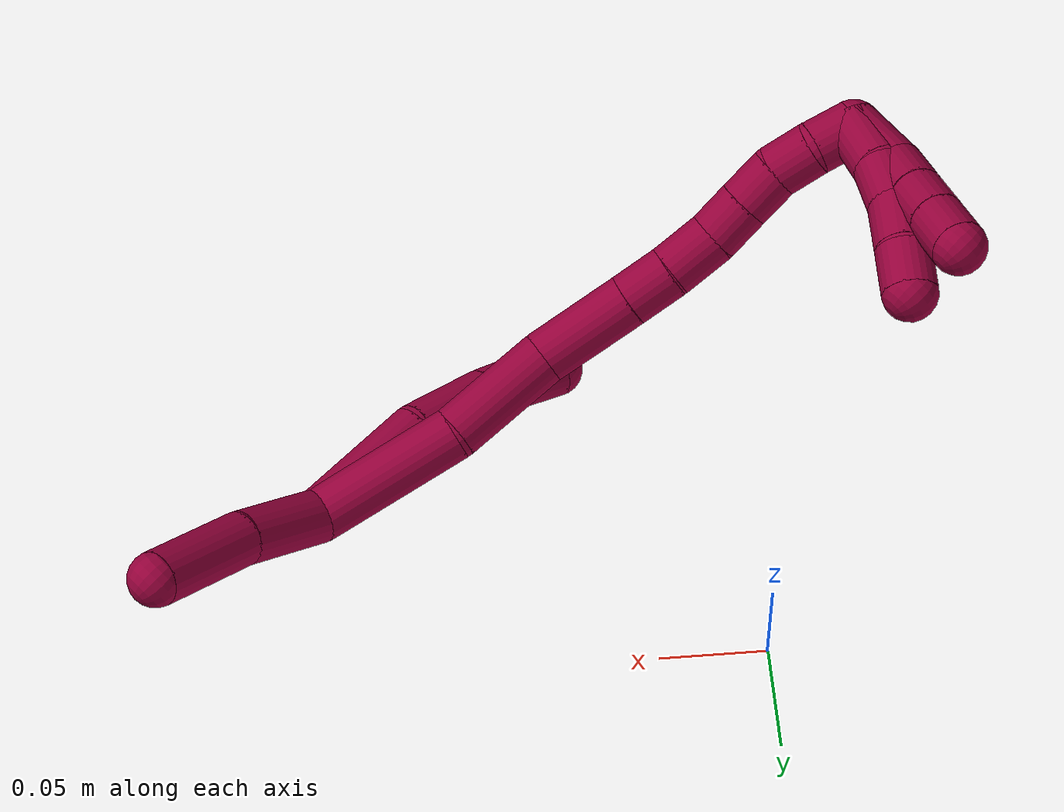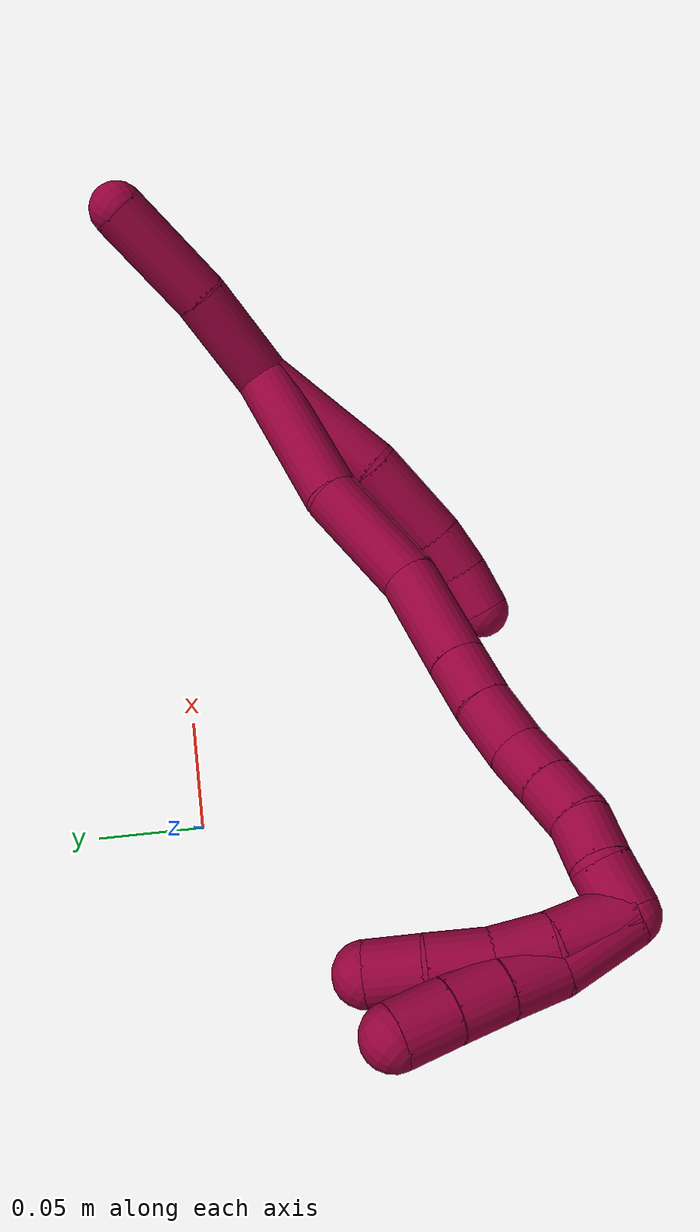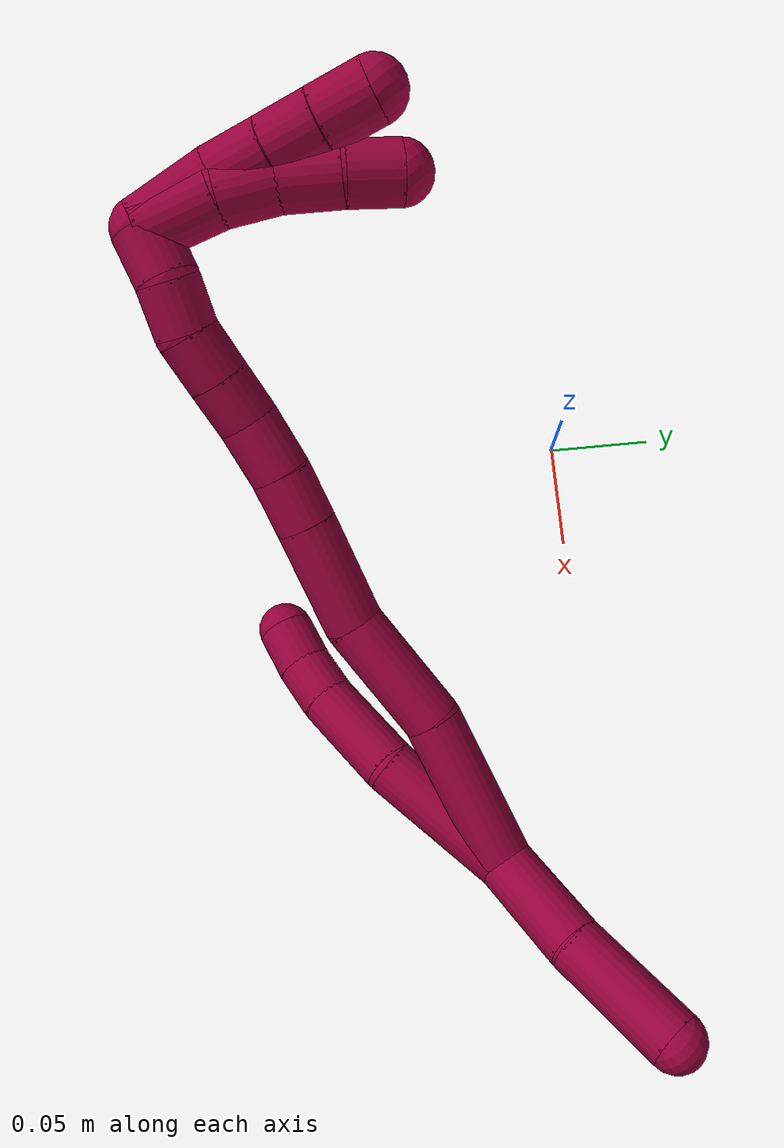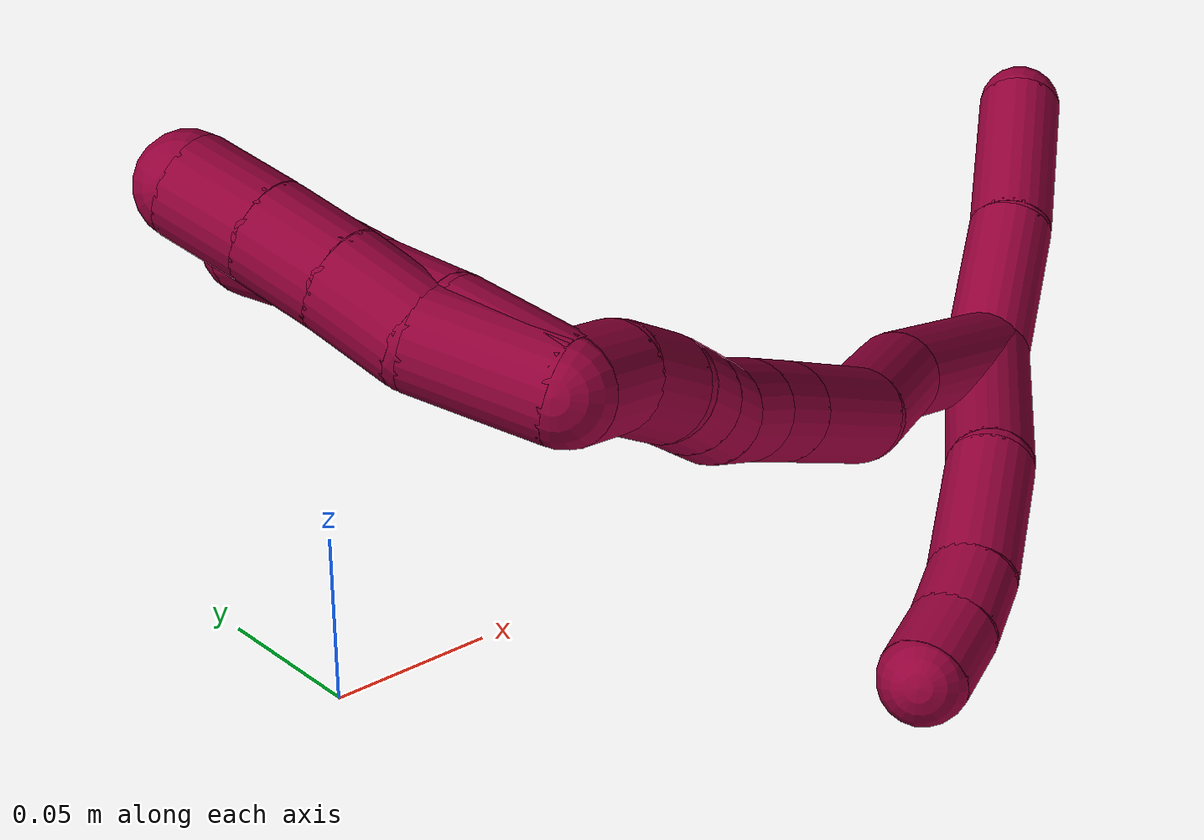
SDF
<sdf version="1.7">
 <world name="default">
  <model name="8">
   <static>0</static>
   <link name="8">
    <collision name="collision-cylinder-e_1_2_8">
     <pose>-0.00919 -0.008801 0.030004 0.285317 -0.285866 -0.041336</pose>
     <geometry><cylinder><radius>0.0125</radius><length>0.065182</length></cylinder></geometry>
     <surface>
      <friction><ode><mu>1.16</mu><mu2>1.16</mu2><slip1>0</slip1><slip2>0</slip2></ode></friction>
      <contact><ode><kp>1e+06</kp><kd>1</kd><max_vel>0</max_vel><min_depth>0.001</min_depth></ode></contact>
     </surface>
    </collision>
    <visual name="visual-cylinder-e_1_2_8">
     <pose>-0.00919 -0.008801 0.030004 0.285317 -0.285866 -0.041336</pose>
     <geometry><cylinder><radius>0.0125</radius><length>0.065182</length></cylinder></geometry>
     <material><ambient>0.584314 0 0.227451 1</ambient></material>
    </visual>
    <collision name="collision-cylinder-e_2_8_9">
     <pose>-0.029428 -0.022697 0.07797 0.276437 -0.534311 -0.076109</pose>
     <geometry><cylinder><radius>0.0125</radius><length>0.043389</length></cylinder></geometry>
     <surface>
      <friction><ode><mu>1.16</mu><mu2>1.16</mu2><slip1>0</slip1><slip2>0</slip2></ode></friction>
      <contact><ode><kp>1e+06</kp><kd>1</kd><max_vel>0</max_vel><min_depth>0.001</min_depth></ode></contact>
     </surface>
    </collision>
    <visual name="visual-cylinder-e_2_8_9">
     <pose>-0.029428 -0.022697 0.07797 0.276437 -0.534311 -0.076109</pose>
     <geometry><cylinder><radius>0.0125</radius><length>0.043389</length></cylinder></geometry>
     <material><ambient>0.584314 0 0.227451 1</ambient></material>
    </visual>
    <collision name="collision-cylinder-e_3_9_10">
     <pose>-0.045966 -0.028833 0.104627 0.118965 -0.559972 -0.034244</pose>
     <geometry><cylinder><radius>0.0125</radius><length>0.02067</length></cylinder></geometry>
     <surface>
      <friction><ode><mu>1.16</mu><mu2>1.16</mu2><slip1>0</slip1><slip2>0</slip2></ode></friction>
      <contact><ode><kp>1e+06</kp><kd>1</kd><max_vel>0</max_vel><min_depth>0.001</min_depth></ode></contact>
     </surface>
    </collision>
    <visual name="visual-cylinder-e_3_9_10">
     <pose>-0.045966 -0.028833 0.104627 0.118965 -0.559972 -0.034244</pose>
     <geometry><cylinder><radius>0.0125</radius><length>0.02067</length></cylinder></geometry>
     <material><ambient>0.584314 0 0.227451 1</ambient></material>
    </visual>
    <collision name="collision-cylinder-e_4_10_6">
     <pose>-0.056816 -0.029578 0.122205 -0.033067 -0.54271 0.009201</pose>
     <geometry><cylinder><radius>0.0125</radius><length>0.020759</length></cylinder></geometry>
     <surface>
      <friction><ode><mu>1.16</mu><mu2>1.16</mu2><slip1>0</slip1><slip2>0</slip2></ode></friction>
      <contact><ode><kp>1e+06</kp><kd>1</kd><max_vel>0</max_vel><min_depth>0.001</min_depth></ode></contact>
     </surface>
    </collision>
    <visual name="visual-cylinder-e_4_10_6">
     <pose>-0.056816 -0.029578 0.122205 -0.033067 -0.54271 0.009201</pose>
     <geometry><cylinder><radius>0.0125</radius><length>0.020759</length></cylinder></geometry>
     <material><ambient>0.584314 0 0.227451 1</ambient></material>
    </visual>
    <collision name="collision-cylinder-e_1_2_11">
     <pose>0.016031 0.006272 -0.016223 -2.77266 0.744676 -2.25022</pose>
     <geometry><cylinder><radius>0.0125</radius><length>0.047309</length></cylinder></geometry>
     <surface>
      <friction><ode><mu>1.16</mu><mu2>1.16</mu2><slip1>0</slip1><slip2>0</slip2></ode></friction>
      <contact><ode><kp>1e+06</kp><kd>1</kd><max_vel>0</max_vel><min_depth>0.001</min_depth></ode></contact>
     </surface>
    </collision>
    <visual name="visual-cylinder-e_1_2_11">
     <pose>0.016031 0.006272 -0.016223 -2.77266 0.744676 -2.25022</pose>
     <geometry><cylinder><radius>0.0125</radius><length>0.047309</length></cylinder></geometry>
     <material><ambient>0.584314 0 0.227451 1</ambient></material>
    </visual>
    <collision name="collision-cylinder-e_2_11_5">
     <pose>0.047551 0.021174 -0.051933 -2.72471 0.628427 -1.98765</pose>
     <geometry><cylinder><radius>0.0125</radius><length>0.052691</length></cylinder></geometry>
     <surface>
      <friction><ode><mu>1.16</mu><mu2>1.16</mu2><slip1>0</slip1><slip2>0</slip2></ode></friction>
      <contact><ode><kp>1e+06</kp><kd>1</kd><max_vel>0</max_vel><min_depth>0.001</min_depth></ode></contact>
     </surface>
    </collision>
    <visual name="visual-cylinder-e_2_11_5">
     <pose>0.047551 0.021174 -0.051933 -2.72471 0.628427 -1.98765</pose>
     <geometry><cylinder><radius>0.0125</radius><length>0.052691</length></cylinder></geometry>
     <material><ambient>0.584314 0 0.227451 1</ambient></material>
    </visual>
    <collision name="collision-cylinder-e_1_2_12">
     <pose>-0.003597 0.008431 0.034556 -0.239313 -0.10078 0.012127</pose>
     <geometry><cylinder><radius>0.0125</radius><length>0.071502</length></cylinder></geometry>
     <surface>
      <friction><ode><mu>1.16</mu><mu2>1.16</mu2><slip1>0</slip1><slip2>0</slip2></ode></friction>
      <contact><ode><kp>1e+06</kp><kd>1</kd><max_vel>0</max_vel><min_depth>0.001</min_depth></ode></contact>
     </surface>
    </collision>
    <visual name="visual-cylinder-e_1_2_12">
     <pose>-0.003597 0.008431 0.034556 -0.239313 -0.10078 0.012127</pose>
     <geometry><cylinder><radius>0.0125</radius><length>0.071502</length></cylinder></geometry>
     <material><ambient>0.584314 0 0.227451 1</ambient></material>
    </visual>
    <collision name="collision-cylinder-e_2_12_13">
     <pose>-0.009331 0.017395 0.095584 -0.020096 -0.080532 0.00081</pose>
     <geometry><cylinder><radius>0.0125</radius><length>0.053128</length></cylinder></geometry>
     <surface>
      <friction><ode><mu>1.16</mu><mu2>1.16</mu2><slip1>0</slip1><slip2>0</slip2></ode></friction>
      <contact><ode><kp>1e+06</kp><kd>1</kd><max_vel>0</max_vel><min_depth>0.001</min_depth></ode></contact>
     </surface>
    </collision>
    <visual name="visual-cylinder-e_2_12_13">
     <pose>-0.009331 0.017395 0.095584 -0.020096 -0.080532 0.00081</pose>
     <geometry><cylinder><radius>0.0125</radius><length>0.053128</length></cylinder></geometry>
     <material><ambient>0.584314 0 0.227451 1</ambient></material>
    </visual>
    <collision name="collision-cylinder-e_3_13_14">
     <pose>-0.011131 0.02489 0.144414 -0.301929 0.014395 -0.00219</pose>
     <geometry><cylinder><radius>0.0125</radius><length>0.046838</length></cylinder></geometry>
     <surface>
      <friction><ode><mu>1.16</mu><mu2>1.16</mu2><slip1>0</slip1><slip2>0</slip2></ode></friction>
      <contact><ode><kp>1e+06</kp><kd>1</kd><max_vel>0</max_vel><min_depth>0.001</min_depth></ode></contact>
     </surface>
    </collision>
    <visual name="visual-cylinder-e_3_13_14">
     <pose>-0.011131 0.02489 0.144414 -0.301929 0.014395 -0.00219</pose>
     <geometry><cylinder><radius>0.0125</radius><length>0.046838</length></cylinder></geometry>
     <material><ambient>0.584314 0 0.227451 1</ambient></material>
    </visual>
    <collision name="collision-cylinder-e_4_14_15">
     <pose>-0.01063 0.035068 0.177675 -0.286775 0.014382 -0.002076</pose>
     <geometry><cylinder><radius>0.0125</radius><length>0.022738</length></cylinder></geometry>
     <surface>
      <friction><ode><mu>1.16</mu><mu2>1.16</mu2><slip1>0</slip1><slip2>0</slip2></ode></friction>
      <contact><ode><kp>1e+06</kp><kd>1</kd><max_vel>0</max_vel><min_depth>0.001</min_depth></ode></contact>
     </surface>
    </collision>
    <visual name="visual-cylinder-e_4_14_15">
     <pose>-0.01063 0.035068 0.177675 -0.286775 0.014382 -0.002076</pose>
     <geometry><cylinder><radius>0.0125</radius><length>0.022738</length></cylinder></geometry>
     <material><ambient>0.584314 0 0.227451 1</ambient></material>
    </visual>
    <collision name="collision-cylinder-e_5_15_16">
     <pose>-0.0101 0.040666 0.200635 -0.195044 0.02985 -0.002921</pose>
     <geometry><cylinder><radius>0.0125</radius><length>0.02459</length></cylinder></geometry>
     <surface>
      <friction><ode><mu>1.16</mu><mu2>1.16</mu2><slip1>0</slip1><slip2>0</slip2></ode></friction>
      <contact><ode><kp>1e+06</kp><kd>1</kd><max_vel>0</max_vel><min_depth>0.001</min_depth></ode></contact>
     </surface>
    </collision>
    <visual name="visual-cylinder-e_5_15_16">
     <pose>-0.0101 0.040666 0.200635 -0.195044 0.02985 -0.002921</pose>
     <geometry><cylinder><radius>0.0125</radius><length>0.02459</length></cylinder></geometry>
     <material><ambient>0.584314 0 0.227451 1</ambient></material>
    </visual>
    <collision name="collision-cylinder-e_6_16_17">
     <pose>-0.007708 0.044927 0.222478 -0.189703 0.200392 -0.019128</pose>
     <geometry><cylinder><radius>0.0125</radius><length>0.020339</length></cylinder></geometry>
     <surface>
      <friction><ode><mu>1.16</mu><mu2>1.16</mu2><slip1>0</slip1><slip2>0</slip2></ode></friction>
      <contact><ode><kp>1e+06</kp><kd>1</kd><max_vel>0</max_vel><min_depth>0.001</min_depth></ode></contact>
     </surface>
    </collision>
    <visual name="visual-cylinder-e_6_16_17">
     <pose>-0.007708 0.044927 0.222478 -0.189703 0.200392 -0.019128</pose>
     <geometry><cylinder><radius>0.0125</radius><length>0.020339</length></cylinder></geometry>
     <material><ambient>0.584314 0 0.227451 1</ambient></material>
    </visual>
    <collision name="collision-cylinder-e_7_17_18">
     <pose>-0.003727 0.048756 0.242045 -0.19679 0.193772 -0.019187</pose>
     <geometry><cylinder><radius>0.0125</radius><length>0.020324</length></cylinder></geometry>
     <surface>
      <friction><ode><mu>1.16</mu><mu2>1.16</mu2><slip1>0</slip1><slip2>0</slip2></ode></friction>
      <contact><ode><kp>1e+06</kp><kd>1</kd><max_vel>0</max_vel><min_depth>0.001</min_depth></ode></contact>
     </surface>
    </collision>
    <visual name="visual-cylinder-e_7_17_18">
     <pose>-0.003727 0.048756 0.242045 -0.19679 0.193772 -0.019187</pose>
     <geometry><cylinder><radius>0.0125</radius><length>0.020324</length></cylinder></geometry>
     <material><ambient>0.584314 0 0.227451 1</ambient></material>
    </visual>
    <collision name="collision-cylinder-e_8_18_19">
     <pose>-0.001171 0.0549 0.261029 -0.427599 0.059155 -0.012847</pose>
     <geometry><cylinder><radius>0.0125</radius><length>0.020266</length></cylinder></geometry>
     <surface>
      <friction><ode><mu>1.16</mu><mu2>1.16</mu2><slip1>0</slip1><slip2>0</slip2></ode></friction>
      <contact><ode><kp>1e+06</kp><kd>1</kd><max_vel>0</max_vel><min_depth>0.001</min_depth></ode></contact>
     </surface>
    </collision>
    <visual name="visual-cylinder-e_8_18_19">
     <pose>-0.001171 0.0549 0.261029 -0.427599 0.059155 -0.012847</pose>
     <geometry><cylinder><radius>0.0125</radius><length>0.020266</length></cylinder></geometry>
     <material><ambient>0.584314 0 0.227451 1</ambient></material>
    </visual>
    <collision name="collision-cylinder-e_9_19_1">
     <pose>-0.002242 0.061561 0.279924 -0.249151 -0.16544 0.020764</pose>
     <geometry><cylinder><radius>0.0125</radius><length>0.020275</length></cylinder></geometry>
     <surface>
      <friction><ode><mu>1.16</mu><mu2>1.16</mu2><slip1>0</slip1><slip2>0</slip2></ode></friction>
      <contact><ode><kp>1e+06</kp><kd>1</kd><max_vel>0</max_vel><min_depth>0.001</min_depth></ode></contact>
     </surface>
    </collision>
    <visual name="visual-cylinder-e_9_19_1">
     <pose>-0.002242 0.061561 0.279924 -0.249151 -0.16544 0.020764</pose>
     <geometry><cylinder><radius>0.0125</radius><length>0.020275</length></cylinder></geometry>
     <material><ambient>0.584314 0 0.227451 1</ambient></material>
    </visual>
    <collision name="collision-cylinder-e_1_1_20">
     <pose>-0.005075 0.078821 0.28494 -1.87683 -0.074838 0.10209</pose>
     <geometry><cylinder><radius>0.0125</radius><length>0.031119</length></cylinder></geometry>
     <surface>
      <friction><ode><mu>1.16</mu><mu2>1.16</mu2><slip1>0</slip1><slip2>0</slip2></ode></friction>
      <contact><ode><kp>1e+06</kp><kd>1</kd><max_vel>0</max_vel><min_depth>0.001</min_depth></ode></contact>
     </surface>
    </collision>
    <visual name="visual-cylinder-e_1_1_20">
     <pose>-0.005075 0.078821 0.28494 -1.87683 -0.074838 0.10209</pose>
     <geometry><cylinder><radius>0.0125</radius><length>0.031119</length></cylinder></geometry>
     <material><ambient>0.584314 0 0.227451 1</ambient></material>
    </visual>
    <collision name="collision-cylinder-e_2_20_21">
     <pose>-0.008195 0.103661 0.275202 -2.03772 -0.172282 0.278659</pose>
     <geometry><cylinder><radius>0.0125</radius><length>0.022835</length></cylinder></geometry>
     <surface>
      <friction><ode><mu>1.16</mu><mu2>1.16</mu2><slip1>0</slip1><slip2>0</slip2></ode></friction>
      <contact><ode><kp>1e+06</kp><kd>1</kd><max_vel>0</max_vel><min_depth>0.001</min_depth></ode></contact>
     </surface>
    </collision>
    <visual name="visual-cylinder-e_2_20_21">
     <pose>-0.008195 0.103661 0.275202 -2.03772 -0.172282 0.278659</pose>
     <geometry><cylinder><radius>0.0125</radius><length>0.022835</length></cylinder></geometry>
     <material><ambient>0.584314 0 0.227451 1</ambient></material>
    </visual>
    <collision name="collision-cylinder-e_3_21_22">
     <pose>-0.011764 0.123472 0.263065 -2.19761 -0.132804 0.259084</pose>
     <geometry><cylinder><radius>0.0125</radius><length>0.024332</length></cylinder></geometry>
     <surface>
      <friction><ode><mu>1.16</mu><mu2>1.16</mu2><slip1>0</slip1><slip2>0</slip2></ode></friction>
      <contact><ode><kp>1e+06</kp><kd>1</kd><max_vel>0</max_vel><min_depth>0.001</min_depth></ode></contact>
     </surface>
    </collision>
    <visual name="visual-cylinder-e_3_21_22">
     <pose>-0.011764 0.123472 0.263065 -2.19761 -0.132804 0.259084</pose>
     <geometry><cylinder><radius>0.0125</radius><length>0.024332</length></cylinder></geometry>
     <material><ambient>0.584314 0 0.227451 1</ambient></material>
    </visual>
    <collision name="collision-cylinder-e_4_22_4">
     <pose>-0.016318 0.141349 0.249402 -2.25302 -0.274537 0.564858</pose>
     <geometry><cylinder><radius>0.0125</radius><length>0.021714</length></cylinder></geometry>
     <surface>
      <friction><ode><mu>1.16</mu><mu2>1.16</mu2><slip1>0</slip1><slip2>0</slip2></ode></friction>
      <contact><ode><kp>1e+06</kp><kd>1</kd><max_vel>0</max_vel><min_depth>0.001</min_depth></ode></contact>
     </surface>
    </collision>
    <visual name="visual-cylinder-e_4_22_4">
     <pose>-0.016318 0.141349 0.249402 -2.25302 -0.274537 0.564858</pose>
     <geometry><cylinder><radius>0.0125</radius><length>0.021714</length></cylinder></geometry>
     <material><ambient>0.584314 0 0.227451 1</ambient></material>
    </visual>
    <collision name="collision-cylinder-e_1_1_23">
     <pose>-0.006866 0.080481 0.28746 -1.701 -0.176181 0.200599</pose>
     <geometry><cylinder><radius>0.0125</radius><length>0.033712</length></cylinder></geometry>
     <surface>
      <friction><ode><mu>1.16</mu><mu2>1.16</mu2><slip1>0</slip1><slip2>0</slip2></ode></friction>
      <contact><ode><kp>1e+06</kp><kd>1</kd><max_vel>0</max_vel><min_depth>0.001</min_depth></ode></contact>
     </surface>
    </collision>
    <visual name="visual-cylinder-e_1_1_23">
     <pose>-0.006866 0.080481 0.28746 -1.701 -0.176181 0.200599</pose>
     <geometry><cylinder><radius>0.0125</radius><length>0.033712</length></cylinder></geometry>
     <material><ambient>0.584314 0 0.227451 1</ambient></material>
    </visual>
    <collision name="collision-cylinder-e_2_23_24">
     <pose>-0.009249 0.107986 0.282335 -1.83342 0.049879 -0.065049</pose>
     <geometry><cylinder><radius>0.0125</radius><length>0.022914</length></cylinder></geometry>
     <surface>
      <friction><ode><mu>1.16</mu><mu2>1.16</mu2><slip1>0</slip1><slip2>0</slip2></ode></friction>
      <contact><ode><kp>1e+06</kp><kd>1</kd><max_vel>0</max_vel><min_depth>0.001</min_depth></ode></contact>
     </surface>
    </collision>
    <visual name="visual-cylinder-e_2_23_24">
     <pose>-0.009249 0.107986 0.282335 -1.83342 0.049879 -0.065049</pose>
     <geometry><cylinder><radius>0.0125</radius><length>0.022914</length></cylinder></geometry>
     <material><ambient>0.584314 0 0.227451 1</ambient></material>
    </visual>
    <collision name="collision-cylinder-e_3_24_25">
     <pose>-0.008603 0.129282 0.276733 -1.82217 0.007024 -0.009056</pose>
     <geometry><cylinder><radius>0.0125</radius><length>0.021155</length></cylinder></geometry>
     <surface>
      <friction><ode><mu>1.16</mu><mu2>1.16</mu2><slip1>0</slip1><slip2>0</slip2></ode></friction>
      <contact><ode><kp>1e+06</kp><kd>1</kd><max_vel>0</max_vel><min_depth>0.001</min_depth></ode></contact>
     </surface>
    </collision>
    <visual name="visual-cylinder-e_3_24_25">
     <pose>-0.008603 0.129282 0.276733 -1.82217 0.007024 -0.009056</pose>
     <geometry><cylinder><radius>0.0125</radius><length>0.021155</length></cylinder></geometry>
     <material><ambient>0.584314 0 0.227451 1</ambient></material>
    </visual>
    <collision name="collision-cylinder-e_4_25_3">
     <pose>-0.008765 0.150293 0.271375 -1.81881 -0.021221 0.027264</pose>
     <geometry><cylinder><radius>0.0125</radius><length>0.022218</length></cylinder></geometry>
     <surface>
      <friction><ode><mu>1.16</mu><mu2>1.16</mu2><slip1>0</slip1><slip2>0</slip2></ode></friction>
      <contact><ode><kp>1e+06</kp><kd>1</kd><max_vel>0</max_vel><min_depth>0.001</min_depth></ode></contact>
     </surface>
    </collision>
    <visual name="visual-cylinder-e_4_25_3">
     <pose>-0.008765 0.150293 0.271375 -1.81881 -0.021221 0.027264</pose>
     <geometry><cylinder><radius>0.0125</radius><length>0.022218</length></cylinder></geometry>
     <material><ambient>0.584314 0 0.227451 1</ambient></material>
    </visual>
    <collision name="collision-sphere-3">
     <pose>-0.009 0.16106 0.268649 0 -0 0</pose>
     <geometry><sphere><radius>0.0125</radius></sphere></geometry>
     <surface>
      <friction><ode><mu>1.16</mu><mu2>1.16</mu2><slip1>0</slip1><slip2>0</slip2></ode></friction>
      <contact><ode><kp>1e+06</kp><kd>1</kd><max_vel>0</max_vel><min_depth>0.001</min_depth></ode></contact>
     </surface>
    </collision>
    <visual name="visual-sphere-3">
     <pose>-0.009 0.16106 0.268649 0 -0 0</pose>
     <geometry><sphere><radius>0.0125</radius></sphere></geometry>
     <material><ambient>0.584314 0 0.227451 1</ambient></material>
    </visual>
    <collision name="collision-sphere-25">
     <pose>-0.008529 0.139527 0.274102 0 -0 0</pose>
     <geometry><sphere><radius>0.0125</radius></sphere></geometry>
     <surface>
      <friction><ode><mu>1.16</mu><mu2>1.16</mu2><slip1>0</slip1><slip2>0</slip2></ode></friction>
      <contact><ode><kp>1e+06</kp><kd>1</kd><max_vel>0</max_vel><min_depth>0.001</min_depth></ode></contact>
     </surface>
    </collision>
    <visual name="visual-sphere-25">
     <pose>-0.008529 0.139527 0.274102 0 -0 0</pose>
     <geometry><sphere><radius>0.0125</radius></sphere></geometry>
     <material><ambient>0.584314 0 0.227451 1</ambient></material>
    </visual>
    <collision name="collision-sphere-24">
     <pose>-0.008678 0.119037 0.279364 0 -0 0</pose>
     <geometry><sphere><radius>0.0125</radius></sphere></geometry>
     <surface>
      <friction><ode><mu>1.16</mu><mu2>1.16</mu2><slip1>0</slip1><slip2>0</slip2></ode></friction>
      <contact><ode><kp>1e+06</kp><kd>1</kd><max_vel>0</max_vel><min_depth>0.001</min_depth></ode></contact>
     </surface>
    </collision>
    <visual name="visual-sphere-24">
     <pose>-0.008678 0.119037 0.279364 0 -0 0</pose>
     <geometry><sphere><radius>0.0125</radius></sphere></geometry>
     <material><ambient>0.584314 0 0.227451 1</ambient></material>
    </visual>
    <collision name="collision-sphere-23">
     <pose>-0.00982 0.096936 0.285305 0 -0 0</pose>
     <geometry><sphere><radius>0.0125</radius></sphere></geometry>
     <surface>
      <friction><ode><mu>1.16</mu><mu2>1.16</mu2><slip1>0</slip1><slip2>0</slip2></ode></friction>
      <contact><ode><kp>1e+06</kp><kd>1</kd><max_vel>0</max_vel><min_depth>0.001</min_depth></ode></contact>
     </surface>
    </collision>
    <visual name="visual-sphere-23">
     <pose>-0.00982 0.096936 0.285305 0 -0 0</pose>
     <geometry><sphere><radius>0.0125</radius></sphere></geometry>
     <material><ambient>0.584314 0 0.227451 1</ambient></material>
    </visual>
    <collision name="collision-sphere-4">
     <pose>-0.019261 0.149461 0.242813 0 -0 0</pose>
     <geometry><sphere><radius>0.0125</radius></sphere></geometry>
     <surface>
      <friction><ode><mu>1.16</mu><mu2>1.16</mu2><slip1>0</slip1><slip2>0</slip2></ode></friction>
      <contact><ode><kp>1e+06</kp><kd>1</kd><max_vel>0</max_vel><min_depth>0.001</min_depth></ode></contact>
     </surface>
    </collision>
    <visual name="visual-sphere-4">
     <pose>-0.019261 0.149461 0.242813 0 -0 0</pose>
     <geometry><sphere><radius>0.0125</radius></sphere></geometry>
     <material><ambient>0.584314 0 0.227451 1</ambient></material>
    </visual>
    <collision name="collision-sphere-22">
     <pose>-0.013375 0.133238 0.255992 0 -0 0</pose>
     <geometry><sphere><radius>0.0125</radius></sphere></geometry>
     <surface>
      <friction><ode><mu>1.16</mu><mu2>1.16</mu2><slip1>0</slip1><slip2>0</slip2></ode></friction>
      <contact><ode><kp>1e+06</kp><kd>1</kd><max_vel>0</max_vel><min_depth>0.001</min_depth></ode></contact>
     </surface>
    </collision>
    <visual name="visual-sphere-22">
     <pose>-0.013375 0.133238 0.255992 0 -0 0</pose>
     <geometry><sphere><radius>0.0125</radius></sphere></geometry>
     <material><ambient>0.584314 0 0.227451 1</ambient></material>
    </visual>
    <collision name="collision-sphere-21">
     <pose>-0.010153 0.113705 0.270138 0 -0 0</pose>
     <geometry><sphere><radius>0.0125</radius></sphere></geometry>
     <surface>
      <friction><ode><mu>1.16</mu><mu2>1.16</mu2><slip1>0</slip1><slip2>0</slip2></ode></friction>
      <contact><ode><kp>1e+06</kp><kd>1</kd><max_vel>0</max_vel><min_depth>0.001</min_depth></ode></contact>
     </surface>
    </collision>
    <visual name="visual-sphere-21">
     <pose>-0.010153 0.113705 0.270138 0 -0 0</pose>
     <geometry><sphere><radius>0.0125</radius></sphere></geometry>
     <material><ambient>0.584314 0 0.227451 1</ambient></material>
    </visual>
    <collision name="collision-sphere-20">
     <pose>-0.006238 0.093616 0.280265 0 -0 0</pose>
     <geometry><sphere><radius>0.0125</radius></sphere></geometry>
     <surface>
      <friction><ode><mu>1.16</mu><mu2>1.16</mu2><slip1>0</slip1><slip2>0</slip2></ode></friction>
      <contact><ode><kp>1e+06</kp><kd>1</kd><max_vel>0</max_vel><min_depth>0.001</min_depth></ode></contact>
     </surface>
    </collision>
    <visual name="visual-sphere-20">
     <pose>-0.006238 0.093616 0.280265 0 -0 0</pose>
     <geometry><sphere><radius>0.0125</radius></sphere></geometry>
     <material><ambient>0.584314 0 0.227451 1</ambient></material>
    </visual>
    <collision name="collision-sphere-11">
     <pose>0.032063 0.012545 -0.032446 0 -0 0</pose>
     <geometry><sphere><radius>0.0125</radius></sphere></geometry>
     <surface>
      <friction><ode><mu>1.16</mu><mu2>1.16</mu2><slip1>0</slip1><slip2>0</slip2></ode></friction>
      <contact><ode><kp>1e+06</kp><kd>1</kd><max_vel>0</max_vel><min_depth>0.001</min_depth></ode></contact>
     </surface>
    </collision>
    <visual name="visual-sphere-11">
     <pose>0.032063 0.012545 -0.032446 0 -0 0</pose>
     <geometry><sphere><radius>0.0125</radius></sphere></geometry>
     <material><ambient>0.584314 0 0.227451 1</ambient></material>
    </visual>
    <collision name="collision-sphere-6">
     <pose>-0.062177 -0.029284 0.131088 0 -0 0</pose>
     <geometry><sphere><radius>0.0125</radius></sphere></geometry>
     <surface>
      <friction><ode><mu>1.16</mu><mu2>1.16</mu2><slip1>0</slip1><slip2>0</slip2></ode></friction>
      <contact><ode><kp>1e+06</kp><kd>1</kd><max_vel>0</max_vel><min_depth>0.001</min_depth></ode></contact>
     </surface>
    </collision>
    <visual name="visual-sphere-6">
     <pose>-0.062177 -0.029284 0.131088 0 -0 0</pose>
     <geometry><sphere><radius>0.0125</radius></sphere></geometry>
     <material><ambient>0.584314 0 0.227451 1</ambient></material>
    </visual>
    <collision name="collision-sphere-10">
     <pose>-0.051455 -0.029872 0.113322 0 -0 0</pose>
     <geometry><sphere><radius>0.0125</radius></sphere></geometry>
     <surface>
      <friction><ode><mu>1.16</mu><mu2>1.16</mu2><slip1>0</slip1><slip2>0</slip2></ode></friction>
      <contact><ode><kp>1e+06</kp><kd>1</kd><max_vel>0</max_vel><min_depth>0.001</min_depth></ode></contact>
     </surface>
    </collision>
    <visual name="visual-sphere-10">
     <pose>-0.051455 -0.029872 0.113322 0 -0 0</pose>
     <geometry><sphere><radius>0.0125</radius></sphere></geometry>
     <material><ambient>0.584314 0 0.227451 1</ambient></material>
    </visual>
    <collision name="collision-sphere-9">
     <pose>-0.040476 -0.027793 0.095932 0 -0 0</pose>
     <geometry><sphere><radius>0.0125</radius></sphere></geometry>
     <surface>
      <friction><ode><mu>1.16</mu><mu2>1.16</mu2><slip1>0</slip1><slip2>0</slip2></ode></friction>
      <contact><ode><kp>1e+06</kp><kd>1</kd><max_vel>0</max_vel><min_depth>0.001</min_depth></ode></contact>
     </surface>
    </collision>
    <visual name="visual-sphere-9">
     <pose>-0.040476 -0.027793 0.095932 0 -0 0</pose>
     <geometry><sphere><radius>0.0125</radius></sphere></geometry>
     <material><ambient>0.584314 0 0.227451 1</ambient></material>
    </visual>
    <collision name="collision-sphere-2">
     <geometry><sphere><radius>0.0125</radius></sphere></geometry>
     <surface>
      <friction><ode><mu>1.16</mu><mu2>1.16</mu2><slip1>0</slip1><slip2>0</slip2></ode></friction>
      <contact><ode><kp>1e+06</kp><kd>1</kd><max_vel>0</max_vel><min_depth>0.001</min_depth></ode></contact>
     </surface>
    </collision>
    <visual name="visual-sphere-2">
     <geometry><sphere><radius>0.0125</radius></sphere></geometry>
     <material><ambient>0.584314 0 0.227451 1</ambient></material>
    </visual>
    <collision name="collision-sphere-19">
     <pose>-0.000572 0.059095 0.270234 0 -0 0</pose>
     <geometry><sphere><radius>0.0125</radius></sphere></geometry>
     <surface>
      <friction><ode><mu>1.16</mu><mu2>1.16</mu2><slip1>0</slip1><slip2>0</slip2></ode></friction>
      <contact><ode><kp>1e+06</kp><kd>1</kd><max_vel>0</max_vel><min_depth>0.001</min_depth></ode></contact>
     </surface>
    </collision>
    <visual name="visual-sphere-19">
     <pose>-0.000572 0.059095 0.270234 0 -0 0</pose>
     <geometry><sphere><radius>0.0125</radius></sphere></geometry>
     <material><ambient>0.584314 0 0.227451 1</ambient></material>
    </visual>
    <collision name="collision-sphere-8">
     <pose>-0.018381 -0.017602 0.060009 0 -0 0</pose>
     <geometry><sphere><radius>0.0125</radius></sphere></geometry>
     <surface>
      <friction><ode><mu>1.16</mu><mu2>1.16</mu2><slip1>0</slip1><slip2>0</slip2></ode></friction>
      <contact><ode><kp>1e+06</kp><kd>1</kd><max_vel>0</max_vel><min_depth>0.001</min_depth></ode></contact>
     </surface>
    </collision>
    <visual name="visual-sphere-8">
     <pose>-0.018381 -0.017602 0.060009 0 -0 0</pose>
     <geometry><sphere><radius>0.0125</radius></sphere></geometry>
     <material><ambient>0.584314 0 0.227451 1</ambient></material>
    </visual>
    <collision name="collision-sphere-5">
     <pose>0.063039 0.029804 -0.07142 0 -0 0</pose>
     <geometry><sphere><radius>0.0125</radius></sphere></geometry>
     <surface>
      <friction><ode><mu>1.16</mu><mu2>1.16</mu2><slip1>0</slip1><slip2>0</slip2></ode></friction>
      <contact><ode><kp>1e+06</kp><kd>1</kd><max_vel>0</max_vel><min_depth>0.001</min_depth></ode></contact>
     </surface>
    </collision>
    <visual name="visual-sphere-5">
     <pose>0.063039 0.029804 -0.07142 0 -0 0</pose>
     <geometry><sphere><radius>0.0125</radius></sphere></geometry>
     <material><ambient>0.584314 0 0.227451 1</ambient></material>
    </visual>
    <collision name="collision-sphere-12">
     <pose>-0.007194 0.016862 0.069112 0 -0 0</pose>
     <geometry><sphere><radius>0.0125</radius></sphere></geometry>
     <surface>
      <friction><ode><mu>1.16</mu><mu2>1.16</mu2><slip1>0</slip1><slip2>0</slip2></ode></friction>
      <contact><ode><kp>1e+06</kp><kd>1</kd><max_vel>0</max_vel><min_depth>0.001</min_depth></ode></contact>
     </surface>
    </collision>
    <visual name="visual-sphere-12">
     <pose>-0.007194 0.016862 0.069112 0 -0 0</pose>
     <geometry><sphere><radius>0.0125</radius></sphere></geometry>
     <material><ambient>0.584314 0 0.227451 1</ambient></material>
    </visual>
    <collision name="collision-sphere-13">
     <pose>-0.011468 0.017927 0.122057 0 -0 0</pose>
     <geometry><sphere><radius>0.0125</radius></sphere></geometry>
     <surface>
      <friction><ode><mu>1.16</mu><mu2>1.16</mu2><slip1>0</slip1><slip2>0</slip2></ode></friction>
      <contact><ode><kp>1e+06</kp><kd>1</kd><max_vel>0</max_vel><min_depth>0.001</min_depth></ode></contact>
     </surface>
    </collision>
    <visual name="visual-sphere-13">
     <pose>-0.011468 0.017927 0.122057 0 -0 0</pose>
     <geometry><sphere><radius>0.0125</radius></sphere></geometry>
     <material><ambient>0.584314 0 0.227451 1</ambient></material>
    </visual>
    <collision name="collision-sphere-14">
     <pose>-0.010793 0.031853 0.166771 0 -0 0</pose>
     <geometry><sphere><radius>0.0125</radius></sphere></geometry>
     <surface>
      <friction><ode><mu>1.16</mu><mu2>1.16</mu2><slip1>0</slip1><slip2>0</slip2></ode></friction>
      <contact><ode><kp>1e+06</kp><kd>1</kd><max_vel>0</max_vel><min_depth>0.001</min_depth></ode></contact>
     </surface>
    </collision>
    <visual name="visual-sphere-14">
     <pose>-0.010793 0.031853 0.166771 0 -0 0</pose>
     <geometry><sphere><radius>0.0125</radius></sphere></geometry>
     <material><ambient>0.584314 0 0.227451 1</ambient></material>
    </visual>
    <collision name="collision-sphere-15">
     <pose>-0.010466 0.038284 0.188578 0 -0 0</pose>
     <geometry><sphere><radius>0.0125</radius></sphere></geometry>
     <surface>
      <friction><ode><mu>1.16</mu><mu2>1.16</mu2><slip1>0</slip1><slip2>0</slip2></ode></friction>
      <contact><ode><kp>1e+06</kp><kd>1</kd><max_vel>0</max_vel><min_depth>0.001</min_depth></ode></contact>
     </surface>
    </collision>
    <visual name="visual-sphere-15">
     <pose>-0.010466 0.038284 0.188578 0 -0 0</pose>
     <geometry><sphere><radius>0.0125</radius></sphere></geometry>
     <material><ambient>0.584314 0 0.227451 1</ambient></material>
    </visual>
    <collision name="collision-sphere-16">
     <pose>-0.009733 0.043048 0.212691 0 -0 0</pose>
     <geometry><sphere><radius>0.0125</radius></sphere></geometry>
     <surface>
      <friction><ode><mu>1.16</mu><mu2>1.16</mu2><slip1>0</slip1><slip2>0</slip2></ode></friction>
      <contact><ode><kp>1e+06</kp><kd>1</kd><max_vel>0</max_vel><min_depth>0.001</min_depth></ode></contact>
     </surface>
    </collision>
    <visual name="visual-sphere-16">
     <pose>-0.009733 0.043048 0.212691 0 -0 0</pose>
     <geometry><sphere><radius>0.0125</radius></sphere></geometry>
     <material><ambient>0.584314 0 0.227451 1</ambient></material>
    </visual>
    <collision name="collision-sphere-17">
     <pose>-0.005684 0.046806 0.232266 0 -0 0</pose>
     <geometry><sphere><radius>0.0125</radius></sphere></geometry>
     <surface>
      <friction><ode><mu>1.16</mu><mu2>1.16</mu2><slip1>0</slip1><slip2>0</slip2></ode></friction>
      <contact><ode><kp>1e+06</kp><kd>1</kd><max_vel>0</max_vel><min_depth>0.001</min_depth></ode></contact>
     </surface>
    </collision>
    <visual name="visual-sphere-17">
     <pose>-0.005684 0.046806 0.232266 0 -0 0</pose>
     <geometry><sphere><radius>0.0125</radius></sphere></geometry>
     <material><ambient>0.584314 0 0.227451 1</ambient></material>
    </visual>
    <collision name="collision-sphere-18">
     <pose>-0.00177 0.050706 0.251824 0 -0 0</pose>
     <geometry><sphere><radius>0.0125</radius></sphere></geometry>
     <surface>
      <friction><ode><mu>1.16</mu><mu2>1.16</mu2><slip1>0</slip1><slip2>0</slip2></ode></friction>
      <contact><ode><kp>1e+06</kp><kd>1</kd><max_vel>0</max_vel><min_depth>0.001</min_depth></ode></contact>
     </surface>
    </collision>
    <visual name="visual-sphere-18">
     <pose>-0.00177 0.050706 0.251824 0 -0 0</pose>
     <geometry><sphere><radius>0.0125</radius></sphere></geometry>
     <material><ambient>0.584314 0 0.227451 1</ambient></material>
    </visual>
    <collision name="collision-sphere-1">
     <pose>-0.003911 0.064026 0.289615 0 -0 0</pose>
     <geometry><sphere><radius>0.0125</radius></sphere></geometry>
     <surface>
      <friction><ode><mu>1.16</mu><mu2>1.16</mu2><slip1>0</slip1><slip2>0</slip2></ode></friction>
      <contact><ode><kp>1e+06</kp><kd>1</kd><max_vel>0</max_vel><min_depth>0.001</min_depth></ode></contact>
     </surface>
    </collision>
    <visual name="visual-sphere-1">
     <pose>-0.003911 0.064026 0.289615 0 -0 0</pose>
     <geometry><sphere><radius>0.0125</radius></sphere></geometry>
     <material><ambient>0.584314 0 0.227451 1</ambient></material>
    </visual>
    <inertial>
     <pose>-0.006151 0.039407 0.140324 0 -0 0</pose>
     <mass>0.75</mass>
     <inertia><ixx>9.5e-05</ixx><ixy>0</ixy><ixz>0</ixz><iyy>0.000118</iyy><iyz>0</iyz><izz>-4e-06</izz></inertia>
    </inertial>
   </link>
   <pose>0.200558 -0.051182 0.061572 0.888407 -1.05843 -0.304887</pose>
  </model>
 </world>
</sdf>
